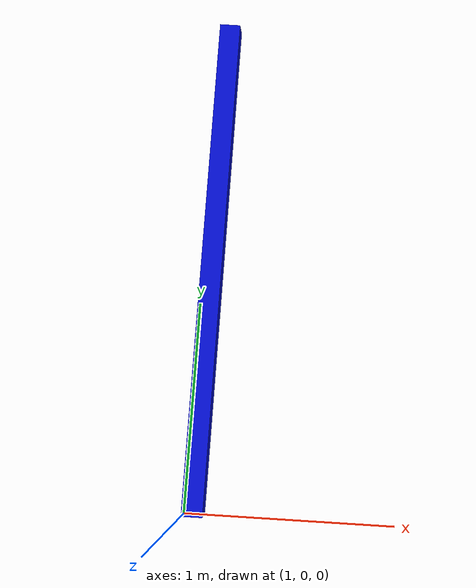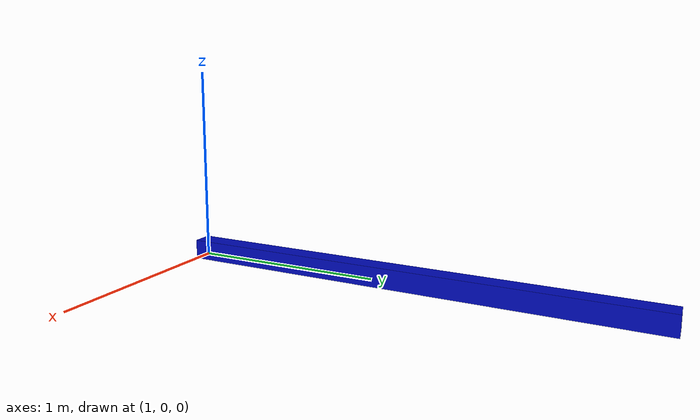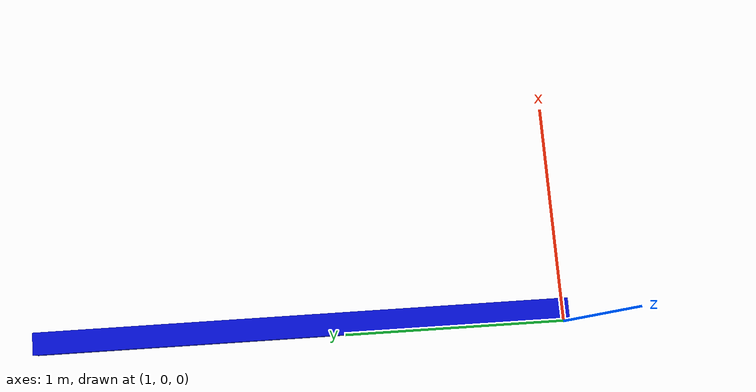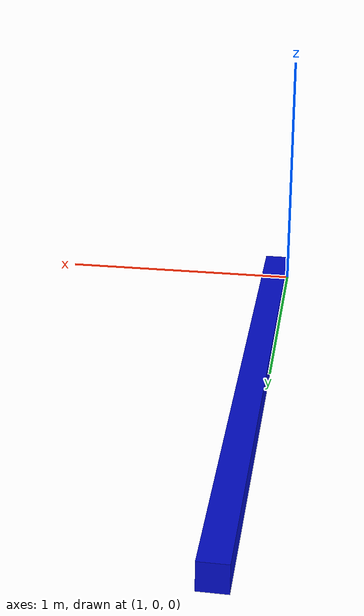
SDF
<?xml version="1.0" ?>
<sdf version="1.5">
  <model name="BlueBar2400">
    <static>true</static>
    <link name="link">
    <gravity>1</gravity>
<inertial>
    <pose>0 0 0.4 0 0 0</pose>
        <mass>500</mass>
        <inertia>
          <ixx>51.2096</ixx>
          <iyy>51.2096</iyy>
          <izz>25</izz>
          <ixy>0</ixy>
          <ixz>0</ixz>
</inertia>
</inertial>
      <collision name="collision">
        <geometry>
          <mesh>
            <scale>1 1 1</scale>
            <uri>model://bar2400/meshes/bar2400.dae</uri>
          </mesh>
        </geometry>
      </collision>
      <visual name="visual">
        <geometry>
          <mesh>
            <scale>1 1 1</scale>
            <uri>model://bar2400/meshes/bar2400.dae</uri>
          </mesh>
        </geometry>
      </visual>
    </link>
  </model>
</sdf>
